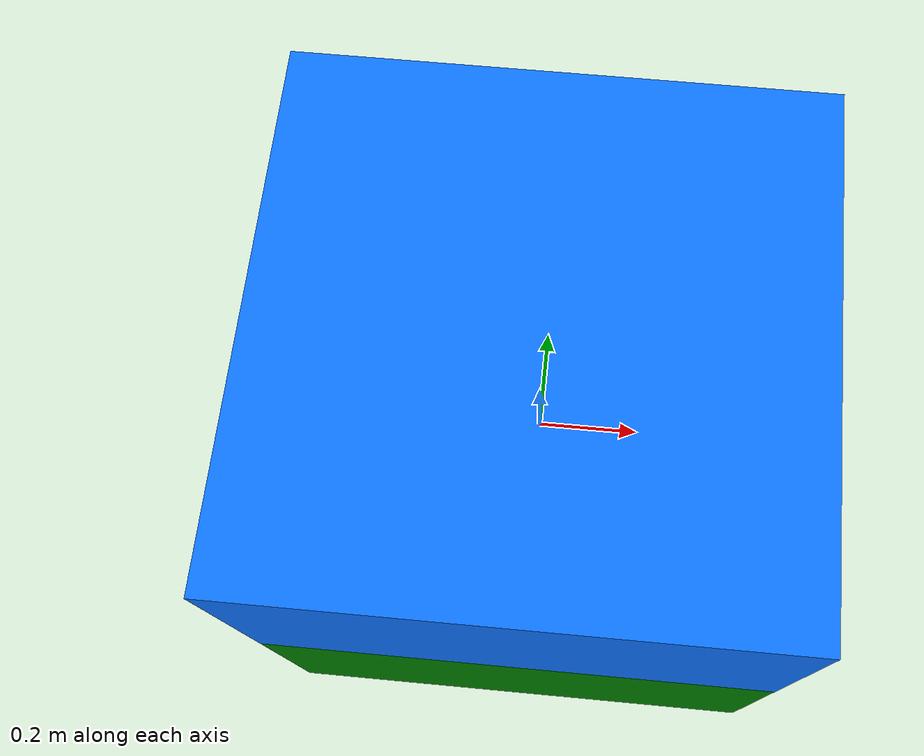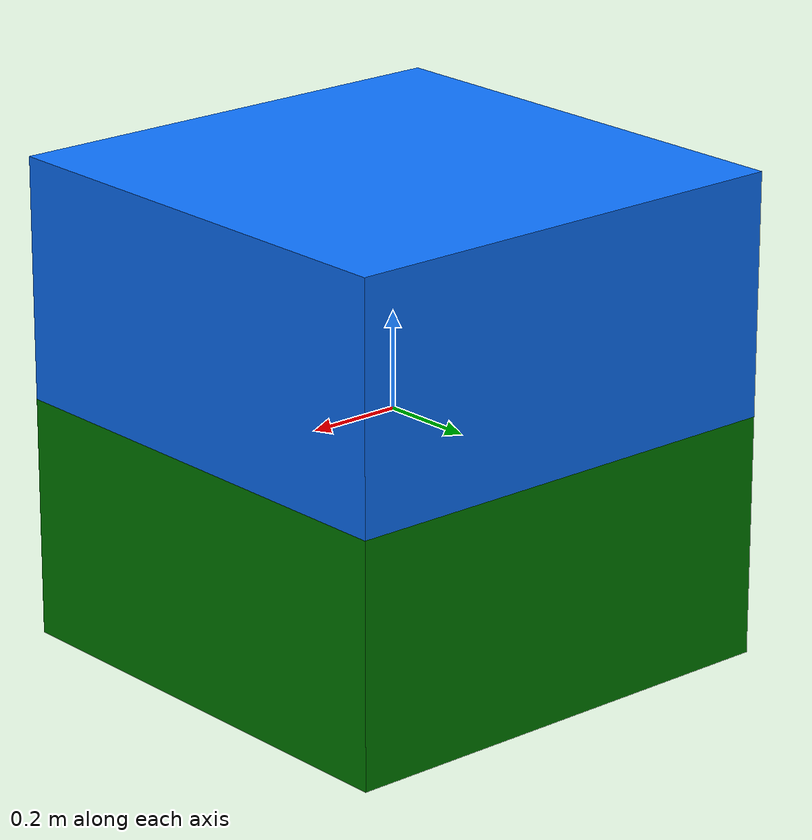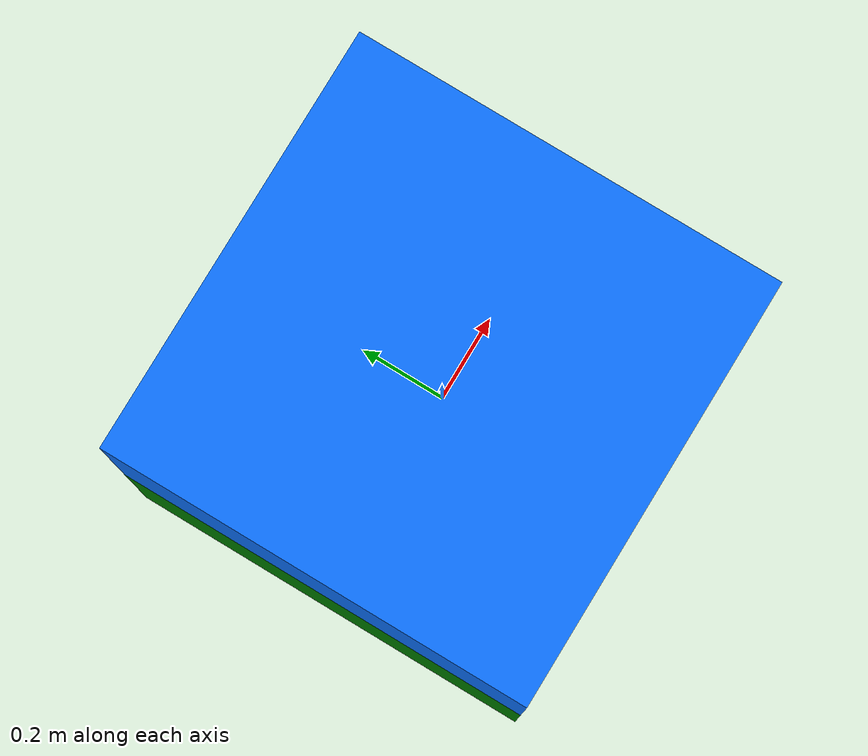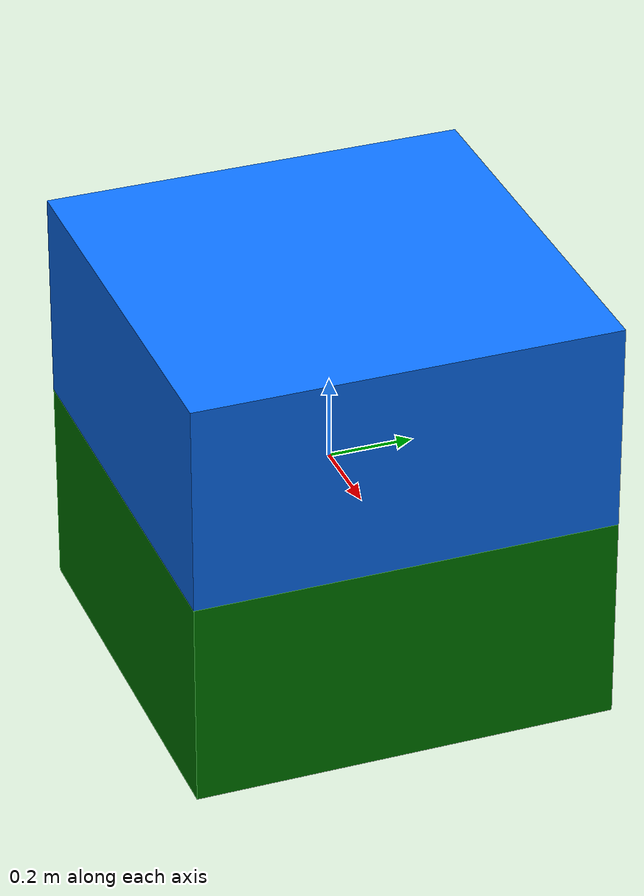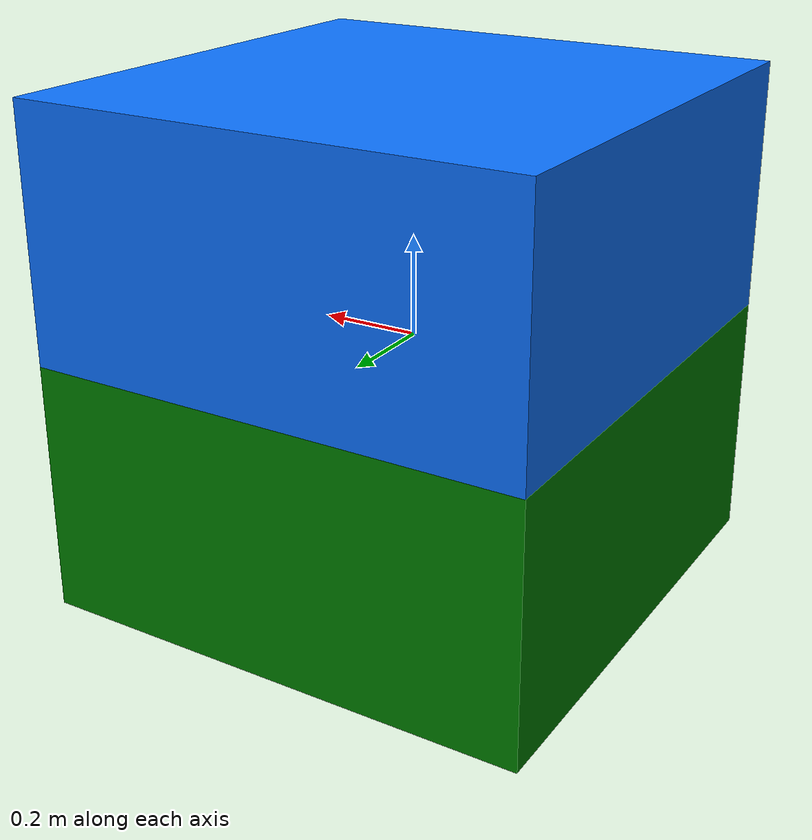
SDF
<?xml version="1.0" ?>
<sdf version="1.6">
    <model name="cube_20k">
        <link name="link">
            <inertial>
                <pose>0 0 0 0 0 0</pose>
                <mass>3.5</mass>
                <inertia>
                  <ixx>0.16666</ixx>
                  <ixy>0</ixy>
                  <ixz>0</ixz>
                  <iyy>0.16666</iyy>
                  <iyz>0</iyz>
                  <izz>0.16666</izz>
                </inertia>
            </inertial>
            <collision name="box_collision">
                <geometry>
                    <box>
                      <size>1 1 1</size>
                    </box>
                </geometry>
            </collision>
            <visual name='box_visual_top'>
              <pose>0 0 0.25 0 0 0</pose> <!-- setengah atas -->
              <geometry>
                <box>
                  <size>1 1 0.5</size>
                </box>
              </geometry>
              <material>
                <ambient>0.05 0.45 1.0 1</ambient> <!-- biru -->
                <diffuse>0.05 0.45 1.0 1</diffuse>
              </material>
            </visual>
            <visual name='box_visual_bottom'>
              <pose>0 0 -0.25 0 0 0</pose> <!-- setengah bawah -->
              <geometry>
                <box>
                  <size>1 1 0.5</size>
                </box>
              </geometry>
              <material>
                <ambient>0 0.3 0 1</ambient> <!-- hijau -->
                <diffuse>0 0.5 0 1</diffuse>
              </material>
            </visual>
        </link>
    </model>
</sdf>
